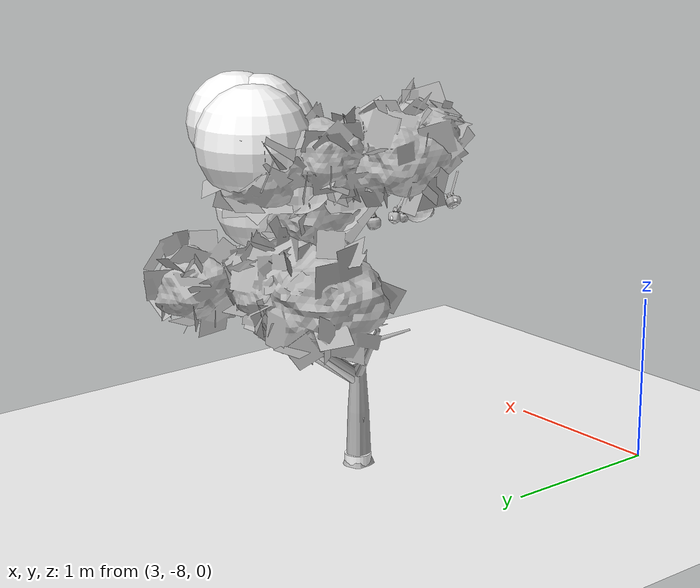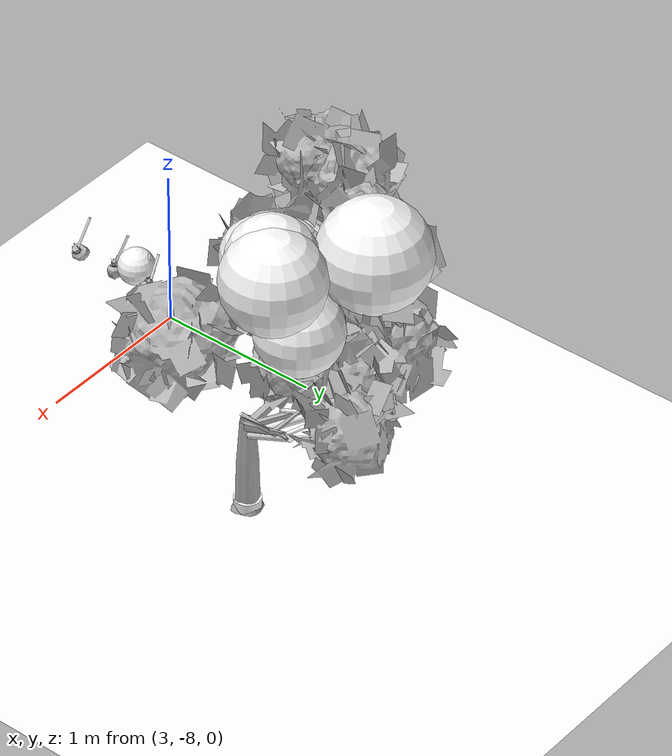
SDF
<sdf version="1.11">
 <world name="peach_orchard">
  <model name="ground">
   <static>true</static>
   <link name="link">
    <visual name="soil">
     <geometry><plane><normal>0 0 1</normal><size>32 22</size></plane></geometry>
     <material>
      <ambient>1 1 1 1</ambient>
      <diffuse>1 1 1 1</diffuse>
      <specular>0.1 0.1 0.1 1</specular>
      <pbr>
       <metal>
        <albedo_map>textures/soil_albedo.png</albedo_map>
        <normal_map type="tangent">textures/soil_normal.png</normal_map>
        <roughness>0.95</roughness>
        <metalness>0</metalness>
       </metal>
      </pbr>
     </material>
    </visual>
    <collision name="c_soil">
     <geometry><plane><normal>0 0 1</normal><size>32 22</size></plane></geometry>
    </collision>
   </link>
  </model>
  <model name="tree_r3_t0">
   <pose>4 -6.6 0 0 0 0</pose>
   <static>true</static>
   <link name="link">
    <visual name="tree_mesh">
     <pose>0 0 0 0 0 0.210482</pose>
     <geometry>
      <mesh><uri>model://peach_sim/meshes/peach_tree_a.glb</uri><scale>1.0623 1.0623 1.0623</scale></mesh>
     </geometry>
    </visual>
    <visual name="trunk_0">
     <pose>0 0 0.15302 0 0 0</pose>
     <geometry><cylinder><radius>0.0556093</radius><length>0.30604</length></cylinder></geometry>
     <material>
      <ambient>1 1 1 1</ambient>
      <diffuse>1 1 1 1</diffuse>
      <specular>0.1 0.1 0.1 1</specular>
      <pbr>
       <metal>
        <albedo_map>textures/bark_albedo.png</albedo_map>
        <normal_map type="tangent">textures/bark_normal.png</normal_map>
        <roughness>0.9</roughness>
        <metalness>0</metalness>
       </metal>
      </pbr>
     </material>
    </visual>
    <collision name="c_trunk_0">
     <pose>0 0 0.15302 0 0 0</pose>
     <geometry><cylinder><radius>0.0556093</radius><length>0.30604</length></cylinder></geometry>
    </collision>
    <visual name="trunk_1">
     <pose>0 0 0.431239 0 0 0</pose>
     <geometry><cylinder><radius>0.0400387</radius><length>0.250397</length></cylinder></geometry>
     <material>
      <ambient>1 1 1 1</ambient>
      <diffuse>1 1 1 1</diffuse>
      <specular>0.1 0.1 0.1 1</specular>
      <pbr>
       <metal>
        <albedo_map>textures/bark_albedo.png</albedo_map>
        <normal_map type="tangent">textures/bark_normal.png</normal_map>
        <roughness>0.9</roughness>
        <metalness>0</metalness>
       </metal>
      </pbr>
     </material>
    </visual>
    <collision name="c_trunk_1">
     <pose>0 0 0.431239 0 0 0</pose>
     <geometry><cylinder><radius>0.0400387</radius><length>0.250397</length></cylinder></geometry>
    </collision>
    <visual name="root_flare">
     <pose>0 0 0.035 0 0 0</pose>
     <geometry><cylinder><radius>0.0806335</radius><length>0.07</length></cylinder></geometry>
     <material>
      <ambient>1 1 1 1</ambient>
      <diffuse>1 1 1 1</diffuse>
      <specular>0.1 0.1 0.1 1</specular>
      <pbr>
       <metal>
        <albedo_map>textures/bark_albedo.png</albedo_map>
        <normal_map type="tangent">textures/bark_normal.png</normal_map>
        <roughness>0.95</roughness>
        <metalness>0</metalness>
       </metal>
      </pbr>
     </material>
    </visual>
    <visual name="scaffold_0">
     <pose>-0.0105899 0.314252 0.767716 0 0.887869 1.60448</pose>
     <geometry><cylinder><radius>0.022</radius><length>0.810672</length></cylinder></geometry>
     <material>
      <ambient>1 1 1 1</ambient>
      <diffuse>1 1 1 1</diffuse>
      <specular>0.1 0.1 0.1 1</specular>
      <pbr>
       <metal>
        <albedo_map>textures/bark_albedo.png</albedo_map>
        <normal_map type="tangent">textures/bark_normal.png</normal_map>
        <roughness>0.9</roughness>
        <metalness>0</metalness>
       </metal>
      </pbr>
     </material>
    </visual>
    <collision name="c_scaffold_0">
     <pose>-0.0105899 0.314252 0.767716 0 0.887869 1.60448</pose>
     <geometry><cylinder><radius>0.022</radius><length>0.810672</length></cylinder></geometry>
    </collision>
    <visual name="branchlet_0_0">
     <pose>0.0610896 0.411993 0.92727 0 1.34717 -0.730648</pose>
     <geometry><cylinder><radius>0.012</radius><length>0.212911</length></cylinder></geometry>
     <material>
      <ambient>1 1 1 1</ambient>
      <diffuse>1 1 1 1</diffuse>
      <specular>0.1 0.1 0.1 1</specular>
      <pbr>
       <metal>
        <albedo_map>textures/bark_albedo.png</albedo_map>
        <normal_map type="tangent">textures/bark_normal.png</normal_map>
        <roughness>0.9</roughness>
        <metalness>0</metalness>
       </metal>
      </pbr>
     </material>
    </visual>
    <visual name="branchlet_0_1">
     <pose>0.00327641 0.629002 1.00645 0 1.00672 1.37103</pose>
     <geometry><cylinder><radius>0.012</radius><length>0.250225</length></cylinder></geometry>
     <material>
      <ambient>1 1 1 1</ambient>
      <diffuse>1 1 1 1</diffuse>
      <specular>0.1 0.1 0.1 1</specular>
      <pbr>
       <metal>
        <albedo_map>textures/bark_albedo.png</albedo_map>
        <normal_map type="tangent">textures/bark_normal.png</normal_map>
        <roughness>0.9</roughness>
        <metalness>0</metalness>
       </metal>
      </pbr>
     </material>
    </visual>
    <visual name="scaffold_1">
     <pose>0.112412 0.242016 0.700521 0 0.955546 1.13597</pose>
     <geometry><cylinder><radius>0.022</radius><length>0.653538</length></cylinder></geometry>
     <material>
      <ambient>1 1 1 1</ambient>
      <diffuse>1 1 1 1</diffuse>
      <specular>0.1 0.1 0.1 1</specular>
      <pbr>
       <metal>
        <albedo_map>textures/bark_albedo.png</albedo_map>
        <normal_map type="tangent">textures/bark_normal.png</normal_map>
        <roughness>0.9</roughness>
        <metalness>0</metalness>
       </metal>
      </pbr>
     </material>
    </visual>
    <collision name="c_scaffold_1">
     <pose>0.112412 0.242016 0.700521 0 0.955546 1.13597</pose>
     <geometry><cylinder><radius>0.022</radius><length>0.653538</length></cylinder></geometry>
    </collision>
    <visual name="branchlet_1_0">
     <pose>0.236513 0.286421 0.87889 0 0.85312 -0.799009</pose>
     <geometry><cylinder><radius>0.012</radius><length>0.266637</length></cylinder></geometry>
     <material>
      <ambient>1 1 1 1</ambient>
      <diffuse>1 1 1 1</diffuse>
      <specular>0.1 0.1 0.1 1</specular>
      <pbr>
       <metal>
        <albedo_map>textures/bark_albedo.png</albedo_map>
        <normal_map type="tangent">textures/bark_normal.png</normal_map>
        <roughness>0.9</roughness>
        <metalness>0</metalness>
       </metal>
      </pbr>
     </material>
    </visual>
    <visual name="branchlet_1_1">
     <pose>0.0516583 0.44571 0.83719 0 1.29788 2.55002</pose>
     <geometry><cylinder><radius>0.012</radius><length>0.296277</length></cylinder></geometry>
     <material>
      <ambient>1 1 1 1</ambient>
      <diffuse>1 1 1 1</diffuse>
      <specular>0.1 0.1 0.1 1</specular>
      <pbr>
       <metal>
        <albedo_map>textures/bark_albedo.png</albedo_map>
        <normal_map type="tangent">textures/bark_normal.png</normal_map>
        <roughness>0.9</roughness>
        <metalness>0</metalness>
       </metal>
      </pbr>
     </material>
    </visual>
    <visual name="branchlet_1_2">
     <pose>0.156918 0.493924 0.851428 0 1.19995 1.72154</pose>
     <geometry><cylinder><radius>0.012</radius><length>0.255299</length></cylinder></geometry>
     <material>
      <ambient>1 1 1 1</ambient>
      <diffuse>1 1 1 1</diffuse>
      <specular>0.1 0.1 0.1 1</specular>
      <pbr>
       <metal>
        <albedo_map>textures/bark_albedo.png</albedo_map>
        <normal_map type="tangent">textures/bark_normal.png</normal_map>
        <roughness>0.9</roughness>
        <metalness>0</metalness>
       </metal>
      </pbr>
     </material>
    </visual>
    <visual name="canopy_0">
     <pose>0.0408955 0.26161 1.81235 0 0 0</pose>
     <geometry><sphere><radius>0.280646</radius></sphere></geometry>
     <material>
      <ambient>1 1 1 1</ambient>
      <diffuse>1 1 1 1</diffuse>
      <specular>0.1 0.1 0.1 1</specular>
      <pbr>
       <metal>
        <albedo_map>textures/leaf_albedo.png</albedo_map>
        <normal_map type="tangent">textures/leaf_normal.png</normal_map>
        <roughness>0.85</roughness>
        <metalness>0</metalness>
       </metal>
      </pbr>
     </material>
    </visual>
    <collision name="c_canopy_0">
     <pose>0.0408955 0.26161 1.81235 0 0 0</pose>
     <geometry><sphere><radius>0.280646</radius></sphere></geometry>
    </collision>
    <visual name="canopy_1">
     <pose>0.297753 0.3431 2.07911 0 0 0</pose>
     <geometry><sphere><radius>0.220225</radius></sphere></geometry>
     <material>
      <ambient>1 1 1 1</ambient>
      <diffuse>1 1 1 1</diffuse>
      <specular>0.1 0.1 0.1 1</specular>
      <pbr>
       <metal>
        <albedo_map>textures/leaf_albedo.png</albedo_map>
        <normal_map type="tangent">textures/leaf_normal.png</normal_map>
        <roughness>0.85</roughness>
        <metalness>0</metalness>
       </metal>
      </pbr>
     </material>
    </visual>
    <collision name="c_canopy_1">
     <pose>0.297753 0.3431 2.07911 0 0 0</pose>
     <geometry><sphere><radius>0.220225</radius></sphere></geometry>
    </collision>
    <visual name="canopy_2">
     <pose>-0.232357 0.596794 1.88742 0 0 0</pose>
     <geometry><sphere><radius>0.199249</radius></sphere></geometry>
     <material>
      <ambient>1 1 1 1</ambient>
      <diffuse>1 1 1 1</diffuse>
      <specular>0.1 0.1 0.1 1</specular>
      <pbr>
       <metal>
        <albedo_map>textures/leaf_albedo.png</albedo_map>
        <normal_map type="tangent">textures/leaf_normal.png</normal_map>
        <roughness>0.85</roughness>
        <metalness>0</metalness>
       </metal>
      </pbr>
     </material>
    </visual>
    <collision name="c_canopy_2">
     <pose>-0.232357 0.596794 1.88742 0 0 0</pose>
     <geometry><sphere><radius>0.199249</radius></sphere></geometry>
    </collision>
    <visual name="canopy_3">
     <pose>0.425943 0.53299 2.08937 0 0 0</pose>
     <geometry><sphere><radius>0.29277</radius></sphere></geometry>
     <material>
      <ambient>1 1 1 1</ambient>
      <diffuse>1 1 1 1</diffuse>
      <specular>0.1 0.1 0.1 1</specular>
      <pbr>
       <metal>
        <albedo_map>textures/leaf_albedo.png</albedo_map>
        <normal_map type="tangent">textures/leaf_normal.png</normal_map>
        <roughness>0.85</roughness>
        <metalness>0</metalness>
       </metal>
      </pbr>
     </material>
    </visual>
    <visual name="canopy_4">
     <pose>-0.0397947 0.26993 1.75576 0 0 0</pose>
     <geometry><sphere><radius>0.281064</radius></sphere></geometry>
     <material>
      <ambient>1 1 1 1</ambient>
      <diffuse>1 1 1 1</diffuse>
      <specular>0.1 0.1 0.1 1</specular>
      <pbr>
       <metal>
        <albedo_map>textures/leaf_albedo.png</albedo_map>
        <normal_map type="tangent">textures/leaf_normal.png</normal_map>
        <roughness>0.85</roughness>
        <metalness>0</metalness>
       </metal>
      </pbr>
     </material>
    </visual>
    <visual name="canopy_5">
     <pose>0.324459 0.441414 2.11613 0 0 0</pose>
     <geometry><sphere><radius>0.255268</radius></sphere></geometry>
     <material>
      <ambient>1 1 1 1</ambient>
      <diffuse>1 1 1 1</diffuse>
      <specular>0.1 0.1 0.1 1</specular>
      <pbr>
       <metal>
        <albedo_map>textures/leaf_albedo.png</albedo_map>
        <normal_map type="tangent">textures/leaf_normal.png</normal_map>
        <roughness>0.85</roughness>
        <metalness>0</metalness>
       </metal>
      </pbr>
     </material>
    </visual>
    <visual name="canopy_6">
     <pose>0.217945 0.537432 1.64301 0 0 0</pose>
     <geometry><sphere><radius>0.251501</radius></sphere></geometry>
     <material>
      <ambient>1 1 1 1</ambient>
      <diffuse>1 1 1 1</diffuse>
      <specular>0.1 0.1 0.1 1</specular>
      <pbr>
       <metal>
        <albedo_map>textures/leaf_albedo.png</albedo_map>
        <normal_map type="tangent">textures/leaf_normal.png</normal_map>
        <roughness>0.85</roughness>
        <metalness>0</metalness>
       </metal>
      </pbr>
     </material>
    </visual>
    <visual name="canopy_7">
     <pose>-0.0905776 0.787332 2.07958 0 0 0</pose>
     <geometry><sphere><radius>0.318735</radius></sphere></geometry>
     <material>
      <ambient>1 1 1 1</ambient>
      <diffuse>1 1 1 1</diffuse>
      <specular>0.1 0.1 0.1 1</specular>
      <pbr>
       <metal>
        <albedo_map>textures/leaf_albedo.png</albedo_map>
        <normal_map type="tangent">textures/leaf_normal.png</normal_map>
        <roughness>0.85</roughness>
        <metalness>0</metalness>
       </metal>
      </pbr>
     </material>
    </visual>
    <visual name="foliage_0">
     <pose>0.205199 -0.0439581 1.42515 0 0 0</pose>
     <geometry><sphere><radius>0.0999698</radius></sphere></geometry>
     <material>
      <ambient>1 1 1 1</ambient>
      <diffuse>1 1 1 1</diffuse>
      <specular>0.1 0.1 0.1 1</specular>
      <pbr>
       <metal>
        <albedo_map>textures/leaf_albedo.png</albedo_map>
        <normal_map type="tangent">textures/leaf_normal.png</normal_map>
        <roughness>0.85</roughness>
        <metalness>0</metalness>
       </metal>
      </pbr>
     </material>
    </visual>
    <visual name="foliage_4">
     <pose>0.280336 -0.00966176 1.50219 0 0 0</pose>
     <geometry><sphere><radius>0.0802819</radius></sphere></geometry>
     <material>
      <ambient>1 1 1 1</ambient>
      <diffuse>1 1 1 1</diffuse>
      <specular>0.1 0.1 0.1 1</specular>
      <pbr>
       <metal>
        <albedo_map>textures/leaf_albedo.png</albedo_map>
        <normal_map type="tangent">textures/leaf_normal.png</normal_map>
        <roughness>0.85</roughness>
        <metalness>0</metalness>
       </metal>
      </pbr>
     </material>
    </visual>
    <visual name="foliage_8">
     <pose>0.181397 -0.614469 1.4774 0 0 0</pose>
     <geometry><sphere><radius>0.104848</radius></sphere></geometry>
     <material>
      <ambient>1 1 1 1</ambient>
      <diffuse>1 1 1 1</diffuse>
      <specular>0.1 0.1 0.1 1</specular>
      <pbr>
       <metal>
        <albedo_map>textures/leaf_albedo.png</albedo_map>
        <normal_map type="tangent">textures/leaf_normal.png</normal_map>
        <roughness>0.85</roughness>
        <metalness>0</metalness>
       </metal>
      </pbr>
     </material>
    </visual>
    <visual name="twig_0">
     <pose>0.161272 -0.115505 1.49293 0 0.412594 -2.90051</pose>
     <geometry><cylinder><radius>0.007</radius><length>0.127995</length></cylinder></geometry>
     <material>
      <ambient>1 1 1 1</ambient>
      <diffuse>1 1 1 1</diffuse>
      <specular>0.1 0.1 0.1 1</specular>
      <pbr>
       <metal>
        <albedo_map>textures/bark_albedo.png</albedo_map>
        <normal_map type="tangent">textures/bark_normal.png</normal_map>
        <roughness>0.9</roughness>
        <metalness>0</metalness>
       </metal>
      </pbr>
     </material>
    </visual>
    <visual name="twig_1">
     <pose>0.158182 -0.0581862 1.52413 0 0.715115 -3.02339</pose>
     <geometry><cylinder><radius>0.007</radius><length>0.188418</length></cylinder></geometry>
     <material>
      <ambient>1 1 1 1</ambient>
      <diffuse>1 1 1 1</diffuse>
      <specular>0.1 0.1 0.1 1</specular>
      <pbr>
       <metal>
        <albedo_map>textures/bark_albedo.png</albedo_map>
        <normal_map type="tangent">textures/bark_normal.png</normal_map>
        <roughness>0.9</roughness>
        <metalness>0</metalness>
       </metal>
      </pbr>
     </material>
    </visual>
    <visual name="twig_2">
     <pose>0.18834 -0.101528 1.56511 0 0.521138 -2.89502</pose>
     <geometry><cylinder><radius>0.007</radius><length>0.142202</length></cylinder></geometry>
     <material>
      <ambient>1 1 1 1</ambient>
      <diffuse>1 1 1 1</diffuse>
      <specular>0.1 0.1 0.1 1</specular>
      <pbr>
       <metal>
        <albedo_map>textures/bark_albedo.png</albedo_map>
        <normal_map type="tangent">textures/bark_normal.png</normal_map>
        <roughness>0.9</roughness>
        <metalness>0</metalness>
       </metal>
      </pbr>
     </material>
    </visual>
    <visual name="twig_3">
     <pose>0.171339 -0.052174 1.58311 0 0.431326 2.50493</pose>
     <geometry><cylinder><radius>0.007</radius><length>0.162888</length></cylinder></geometry>
     <material>
      <ambient>1 1 1 1</ambient>
      <diffuse>1 1 1 1</diffuse>
      <specular>0.1 0.1 0.1 1</specular>
      <pbr>
       <metal>
        <albedo_map>textures/bark_albedo.png</albedo_map>
        <normal_map type="tangent">textures/bark_normal.png</normal_map>
        <roughness>0.9</roughness>
        <metalness>0</metalness>
       </metal>
      </pbr>
     </material>
    </visual>
    <visual name="twig_4">
     <pose>0.208274 -0.0202714 1.56957 0 0.37697 2.19467</pose>
     <geometry><cylinder><radius>0.007</radius><length>0.119986</length></cylinder></geometry>
     <material>
      <ambient>1 1 1 1</ambient>
      <diffuse>1 1 1 1</diffuse>
      <specular>0.1 0.1 0.1 1</specular>
      <pbr>
       <metal>
        <albedo_map>textures/bark_albedo.png</albedo_map>
        <normal_map type="tangent">textures/bark_normal.png</normal_map>
        <roughness>0.9</roughness>
        <metalness>0</metalness>
       </metal>
      </pbr>
     </material>
    </visual>
    <visual name="twig_5">
     <pose>0.192987 -0.0529154 1.5577 0 0.597044 -2.74615</pose>
     <geometry><cylinder><radius>0.007</radius><length>0.107194</length></cylinder></geometry>
     <material>
      <ambient>1 1 1 1</ambient>
      <diffuse>1 1 1 1</diffuse>
      <specular>0.1 0.1 0.1 1</specular>
      <pbr>
       <metal>
        <albedo_map>textures/bark_albedo.png</albedo_map>
        <normal_map type="tangent">textures/bark_normal.png</normal_map>
        <roughness>0.9</roughness>
        <metalness>0</metalness>
       </metal>
      </pbr>
     </material>
    </visual>
    <visual name="twig_6">
     <pose>0.182984 -0.283787 1.51191 0 0.629569 2.74837</pose>
     <geometry><cylinder><radius>0.007</radius><length>0.150992</length></cylinder></geometry>
     <material>
      <ambient>1 1 1 1</ambient>
      <diffuse>1 1 1 1</diffuse>
      <specular>0.1 0.1 0.1 1</specular>
      <pbr>
       <metal>
        <albedo_map>textures/bark_albedo.png</albedo_map>
        <normal_map type="tangent">textures/bark_normal.png</normal_map>
        <roughness>0.9</roughness>
        <metalness>0</metalness>
       </metal>
      </pbr>
     </material>
    </visual>
    <visual name="twig_7">
     <pose>0.179115 -0.490696 1.51809 0 0.629126 -2.97474</pose>
     <geometry><cylinder><radius>0.007</radius><length>0.161351</length></cylinder></geometry>
     <material>
      <ambient>1 1 1 1</ambient>
      <diffuse>1 1 1 1</diffuse>
      <specular>0.1 0.1 0.1 1</specular>
      <pbr>
       <metal>
        <albedo_map>textures/bark_albedo.png</albedo_map>
        <normal_map type="tangent">textures/bark_normal.png</normal_map>
        <roughness>0.9</roughness>
        <metalness>0</metalness>
       </metal>
      </pbr>
     </material>
    </visual>
    <visual name="twig_8">
     <pose>0.174268 -0.535229 1.51023 0 0.454083 -2.69315</pose>
     <geometry><cylinder><radius>0.007</radius><length>0.142294</length></cylinder></geometry>
     <material>
      <ambient>1 1 1 1</ambient>
      <diffuse>1 1 1 1</diffuse>
      <specular>0.1 0.1 0.1 1</specular>
      <pbr>
       <metal>
        <albedo_map>textures/bark_albedo.png</albedo_map>
        <normal_map type="tangent">textures/bark_normal.png</normal_map>
        <roughness>0.9</roughness>
        <metalness>0</metalness>
       </metal>
      </pbr>
     </material>
    </visual>
    <visual name="twig_9">
     <pose>0.201981 -0.699367 1.55759 0 0.356894 2.17544</pose>
     <geometry><cylinder><radius>0.007</radius><length>0.203774</length></cylinder></geometry>
     <material>
      <ambient>1 1 1 1</ambient>
      <diffuse>1 1 1 1</diffuse>
      <specular>0.1 0.1 0.1 1</specular>
      <pbr>
       <metal>
        <albedo_map>textures/bark_albedo.png</albedo_map>
        <normal_map type="tangent">textures/bark_normal.png</normal_map>
        <roughness>0.9</roughness>
        <metalness>0</metalness>
       </metal>
      </pbr>
     </material>
    </visual>
    <visual name="twig_10">
     <pose>0.221095 -0.952557 1.55364 0 0.469997 2.87751</pose>
     <geometry><cylinder><radius>0.007</radius><length>0.1991</length></cylinder></geometry>
     <material>
      <ambient>1 1 1 1</ambient>
      <diffuse>1 1 1 1</diffuse>
      <specular>0.1 0.1 0.1 1</specular>
      <pbr>
       <metal>
        <albedo_map>textures/bark_albedo.png</albedo_map>
        <normal_map type="tangent">textures/bark_normal.png</normal_map>
        <roughness>0.9</roughness>
        <metalness>0</metalness>
       </metal>
      </pbr>
     </material>
    </visual>
   </link>
  </model>
  <model name="peach_tree_r3_t0_00">
   <pose>4.22 -6.69786 1.36294 0 0.464017 -2.81321</pose>
   <static>true</static>
   <link name="bag">
    <visual name="bag_mesh">
     <pose>0 0 0.0489023 0 0 -0</pose>
     <geometry>
      <mesh><uri>model://peach_sim/meshes/bagged_peach.glb</uri><scale>1.04586 1.17621 1.11142</scale></mesh>
     </geometry>
    </visual>
    <visual name="body">
     <pose>0 0 0.0309023 0 0 0</pose>
     <geometry><ellipsoid><radii>0.0392199 0.0305815 0.0333745</radii></ellipsoid></geometry>
     <material>
      <ambient>1 1 1 1</ambient>
      <diffuse>1 1 1 1</diffuse>
      <specular>0.1 0.1 0.1 1</specular>
      <pbr>
       <metal>
        <albedo_map>textures/paper_bag_albedo.png</albedo_map>
        <normal_map type="tangent">textures/paper_bag_normal.png</normal_map>
        <roughness>0.72</roughness>
        <metalness>0</metalness>
       </metal>
      </pbr>
     </material>
    </visual>
    <visual name="bottom_fold">
     <pose>0 0 0.012 0 0 0.35</pose>
     <geometry><box><size>0.0607908 0.0351688 0.022</size></box></geometry>
     <material>
      <ambient>1 1 1 1</ambient>
      <diffuse>1 1 1 1</diffuse>
      <specular>0.1 0.1 0.1 1</specular>
      <pbr>
       <metal>
        <albedo_map>textures/paper_bag_albedo.png</albedo_map>
        <normal_map type="tangent">textures/paper_bag_normal.png</normal_map>
        <roughness>0.8</roughness>
        <metalness>0</metalness>
       </metal>
      </pbr>
     </material>
    </visual>
    <visual name="fruit">
     <pose>0 0 0.0180275 0 0 0</pose>
     <geometry><sphere><radius>0.0249886</radius></sphere></geometry>
     <material>
      <ambient>1 1 1 1</ambient>
      <diffuse>1 1 1 1</diffuse>
      <specular>0.1 0.1 0.1 1</specular>
      <pbr>
       <metal>
        <albedo_map>textures/fruit_skin_albedo.png</albedo_map>
        <normal_map type="tangent">textures/fruit_skin_normal.png</normal_map>
        <roughness>0.55</roughness>
        <metalness>0</metalness>
       </metal>
      </pbr>
     </material>
    </visual>
    <visual name="neck">
     <pose>0 0 0.0708047 0 0 0</pose>
     <geometry><cylinder><radius>0.013</radius><length>0.018</length></cylinder></geometry>
     <material>
      <ambient>1 1 1 1</ambient>
      <diffuse>1 1 1 1</diffuse>
      <specular>0.1 0.1 0.1 1</specular>
      <pbr>
       <metal>
        <albedo_map>textures/paper_bag_albedo.png</albedo_map>
        <normal_map type="tangent">textures/paper_bag_normal.png</normal_map>
        <roughness>0.75</roughness>
        <metalness>0</metalness>
       </metal>
      </pbr>
     </material>
    </visual>
    <visual name="gather">
     <pose>0 0 0.0518047 0 0 0</pose>
     <geometry><cylinder><radius>0.019</radius><length>0.02</length></cylinder></geometry>
     <material>
      <ambient>1 1 1 1</ambient>
      <diffuse>1 1 1 1</diffuse>
      <specular>0.1 0.1 0.1 1</specular>
      <pbr>
       <metal>
        <albedo_map>textures/paper_bag_albedo.png</albedo_map>
        <normal_map type="tangent">textures/paper_bag_normal.png</normal_map>
        <roughness>0.8</roughness>
        <metalness>0</metalness>
       </metal>
      </pbr>
     </material>
    </visual>
    <visual name="inner_paper">
     <pose>0 0 0.0758047 0 0 0</pose>
     <geometry><cylinder><radius>0.01</radius><length>0.008</length></cylinder></geometry>
     <material>
      <ambient>0.180392 0.14902 0.133333 1</ambient>
      <diffuse>0.180392 0.14902 0.133333 1</diffuse>
      <specular>0.1 0.1 0.1 1</specular>
     </material>
    </visual>
    <visual name="wire_0">
     <pose>0 0 0.0658047 0 0 0</pose>
     <geometry><cylinder><radius>0.0205</radius><length>0.0035</length></cylinder></geometry>
     <material>
      <ambient>0.25 0.25 0.25 1</ambient>
      <diffuse>0.25 0.25 0.25 1</diffuse>
      <specular>0.1 0.1 0.1 1</specular>
     </material>
    </visual>
    <visual name="wire_1">
     <pose>0 0 0.0728047 0 0 0</pose>
     <geometry><cylinder><radius>0.0205</radius><length>0.0035</length></cylinder></geometry>
     <material>
      <ambient>0.25 0.25 0.25 1</ambient>
      <diffuse>0.25 0.25 0.25 1</diffuse>
      <specular>0.1 0.1 0.1 1</specular>
     </material>
    </visual>
    <visual name="wire_tail">
     <pose>0.01 0 0.0738047 0 0.521618 0</pose>
     <geometry><cylinder><radius>0.0012</radius><length>0.026</length></cylinder></geometry>
     <material>
      <ambient>0.25 0.25 0.25 1</ambient>
      <diffuse>0.25 0.25 0.25 1</diffuse>
      <specular>0.1 0.1 0.1 1</specular>
     </material>
    </visual>
    <collision name="c_body">
     <pose>0 0 0.0309023 0 0 0</pose>
     <geometry><cylinder><radius>0.0392199</radius><length>0.0618047</length></cylinder></geometry>
    </collision>
   </link>
  </model>
  <model name="peach_tree_r3_t0_06">
   <pose>4.22 -6.91176 1.37046 0 0.144069 1.21692</pose>
   <static>true</static>
   <link name="bag">
    <visual name="bag_mesh">
     <pose>0 0 0.0496306 0 0 0</pose>
     <geometry>
      <mesh><uri>model://peach_sim/meshes/bagged_peach.glb</uri><scale>1.0392 1.11424 1.12797</scale></mesh>
     </geometry>
    </visual>
    <visual name="body">
     <pose>0 0 0.0316306 0 0 0</pose>
     <geometry><ellipsoid><radii>0.03897 0.0289702 0.0341611</radii></ellipsoid></geometry>
     <material>
      <ambient>1 1 1 1</ambient>
      <diffuse>1 1 1 1</diffuse>
      <specular>0.1 0.1 0.1 1</specular>
      <pbr>
       <metal>
        <albedo_map>textures/paper_bag_albedo.png</albedo_map>
        <normal_map type="tangent">textures/paper_bag_normal.png</normal_map>
        <roughness>0.72</roughness>
        <metalness>0</metalness>
       </metal>
      </pbr>
     </material>
    </visual>
    <visual name="bottom_fold">
     <pose>0 0 0.012 0 0 0.35</pose>
     <geometry><box><size>0.0604035 0.0333157 0.022</size></box></geometry>
     <material>
      <ambient>1 1 1 1</ambient>
      <diffuse>1 1 1 1</diffuse>
      <specular>0.1 0.1 0.1 1</specular>
      <pbr>
       <metal>
        <albedo_map>textures/paper_bag_albedo.png</albedo_map>
        <normal_map type="tangent">textures/paper_bag_normal.png</normal_map>
        <roughness>0.8</roughness>
        <metalness>0</metalness>
       </metal>
      </pbr>
     </material>
    </visual>
    <visual name="fruit">
     <pose>0 0 0.0208944 0 0 0</pose>
     <geometry><sphere><radius>0.0279702</radius></sphere></geometry>
     <material>
      <ambient>1 1 1 1</ambient>
      <diffuse>1 1 1 1</diffuse>
      <specular>0.1 0.1 0.1 1</specular>
      <pbr>
       <metal>
        <albedo_map>textures/fruit_skin_albedo.png</albedo_map>
        <normal_map type="tangent">textures/fruit_skin_normal.png</normal_map>
        <roughness>0.55</roughness>
        <metalness>0</metalness>
       </metal>
      </pbr>
     </material>
    </visual>
    <visual name="neck">
     <pose>0 0 0.0722612 0 0 0</pose>
     <geometry><cylinder><radius>0.013</radius><length>0.018</length></cylinder></geometry>
     <material>
      <ambient>1 1 1 1</ambient>
      <diffuse>1 1 1 1</diffuse>
      <specular>0.1 0.1 0.1 1</specular>
      <pbr>
       <metal>
        <albedo_map>textures/paper_bag_albedo.png</albedo_map>
        <normal_map type="tangent">textures/paper_bag_normal.png</normal_map>
        <roughness>0.75</roughness>
        <metalness>0</metalness>
       </metal>
      </pbr>
     </material>
    </visual>
    <visual name="gather">
     <pose>0 0 0.0532612 0 0 0</pose>
     <geometry><cylinder><radius>0.019</radius><length>0.02</length></cylinder></geometry>
     <material>
      <ambient>1 1 1 1</ambient>
      <diffuse>1 1 1 1</diffuse>
      <specular>0.1 0.1 0.1 1</specular>
      <pbr>
       <metal>
        <albedo_map>textures/paper_bag_albedo.png</albedo_map>
        <normal_map type="tangent">textures/paper_bag_normal.png</normal_map>
        <roughness>0.8</roughness>
        <metalness>0</metalness>
       </metal>
      </pbr>
     </material>
    </visual>
    <visual name="inner_paper">
     <pose>0 0 0.0772612 0 0 0</pose>
     <geometry><cylinder><radius>0.01</radius><length>0.008</length></cylinder></geometry>
     <material>
      <ambient>0.180392 0.14902 0.133333 1</ambient>
      <diffuse>0.180392 0.14902 0.133333 1</diffuse>
      <specular>0.1 0.1 0.1 1</specular>
     </material>
    </visual>
    <visual name="wire_0">
     <pose>0 0 0.0672612 0 0 0</pose>
     <geometry><cylinder><radius>0.0205</radius><length>0.0035</length></cylinder></geometry>
     <material>
      <ambient>0.25 0.25 0.25 1</ambient>
      <diffuse>0.25 0.25 0.25 1</diffuse>
      <specular>0.1 0.1 0.1 1</specular>
     </material>
    </visual>
    <visual name="wire_1">
     <pose>0 0 0.0742612 0 0 0</pose>
     <geometry><cylinder><radius>0.0205</radius><length>0.0035</length></cylinder></geometry>
     <material>
      <ambient>0.25 0.25 0.25 1</ambient>
      <diffuse>0.25 0.25 0.25 1</diffuse>
      <specular>0.1 0.1 0.1 1</specular>
     </material>
    </visual>
    <visual name="wire_tail">
     <pose>0.01 0 0.0752612 0 0.521618 0</pose>
     <geometry><cylinder><radius>0.0012</radius><length>0.026</length></cylinder></geometry>
     <material>
      <ambient>0.25 0.25 0.25 1</ambient>
      <diffuse>0.25 0.25 0.25 1</diffuse>
      <specular>0.1 0.1 0.1 1</specular>
     </material>
    </visual>
    <collision name="c_body">
     <pose>0 0 0.0316306 0 0 0</pose>
     <geometry><cylinder><radius>0.03897</radius><length>0.0632612</length></cylinder></geometry>
    </collision>
   </link>
  </model>
  <model name="peach_tree_r3_t0_07">
   <pose>4.22 -7.06298 1.38182 0 0.283542 -1.28035</pose>
   <static>true</static>
   <link name="bag">
    <visual name="bag_mesh">
     <pose>0 0 0.0459985 0 0 -0</pose>
     <geometry>
      <mesh><uri>model://peach_sim/meshes/bagged_peach.glb</uri><scale>0.9141 1.0537 1.04542</scale></mesh>
     </geometry>
    </visual>
    <visual name="body">
     <pose>0 0 0.0279985 0 0 0</pose>
     <geometry><ellipsoid><radii>0.0342788 0.0273962 0.0302384</radii></ellipsoid></geometry>
     <material>
      <ambient>1 1 1 1</ambient>
      <diffuse>1 1 1 1</diffuse>
      <specular>0.1 0.1 0.1 1</specular>
      <pbr>
       <metal>
        <albedo_map>textures/paper_bag_albedo.png</albedo_map>
        <normal_map type="tangent">textures/paper_bag_normal.png</normal_map>
        <roughness>0.72</roughness>
        <metalness>0</metalness>
       </metal>
      </pbr>
     </material>
    </visual>
    <visual name="bottom_fold">
     <pose>0 0 0.012 0 0 0.35</pose>
     <geometry><box><size>0.0531321 0.0315056 0.022</size></box></geometry>
     <material>
      <ambient>1 1 1 1</ambient>
      <diffuse>1 1 1 1</diffuse>
      <specular>0.1 0.1 0.1 1</specular>
      <pbr>
       <metal>
        <albedo_map>textures/paper_bag_albedo.png</albedo_map>
        <normal_map type="tangent">textures/paper_bag_normal.png</normal_map>
        <roughness>0.8</roughness>
        <metalness>0</metalness>
       </metal>
      </pbr>
     </material>
    </visual>
    <visual name="fruit">
     <pose>0 0 0.019597 0 0 0</pose>
     <geometry><sphere><radius>0.0266209</radius></sphere></geometry>
     <material>
      <ambient>1 1 1 1</ambient>
      <diffuse>1 1 1 1</diffuse>
      <specular>0.1 0.1 0.1 1</specular>
      <pbr>
       <metal>
        <albedo_map>textures/fruit_skin_albedo.png</albedo_map>
        <normal_map type="tangent">textures/fruit_skin_normal.png</normal_map>
        <roughness>0.55</roughness>
        <metalness>0</metalness>
       </metal>
      </pbr>
     </material>
    </visual>
    <visual name="neck">
     <pose>0 0 0.064997 0 0 0</pose>
     <geometry><cylinder><radius>0.013</radius><length>0.018</length></cylinder></geometry>
     <material>
      <ambient>1 1 1 1</ambient>
      <diffuse>1 1 1 1</diffuse>
      <specular>0.1 0.1 0.1 1</specular>
      <pbr>
       <metal>
        <albedo_map>textures/paper_bag_albedo.png</albedo_map>
        <normal_map type="tangent">textures/paper_bag_normal.png</normal_map>
        <roughness>0.75</roughness>
        <metalness>0</metalness>
       </metal>
      </pbr>
     </material>
    </visual>
    <visual name="gather">
     <pose>0 0 0.045997 0 0 0</pose>
     <geometry><cylinder><radius>0.019</radius><length>0.02</length></cylinder></geometry>
     <material>
      <ambient>1 1 1 1</ambient>
      <diffuse>1 1 1 1</diffuse>
      <specular>0.1 0.1 0.1 1</specular>
      <pbr>
       <metal>
        <albedo_map>textures/paper_bag_albedo.png</albedo_map>
        <normal_map type="tangent">textures/paper_bag_normal.png</normal_map>
        <roughness>0.8</roughness>
        <metalness>0</metalness>
       </metal>
      </pbr>
     </material>
    </visual>
    <visual name="inner_paper">
     <pose>0 0 0.069997 0 0 0</pose>
     <geometry><cylinder><radius>0.01</radius><length>0.008</length></cylinder></geometry>
     <material>
      <ambient>0.180392 0.14902 0.133333 1</ambient>
      <diffuse>0.180392 0.14902 0.133333 1</diffuse>
      <specular>0.1 0.1 0.1 1</specular>
     </material>
    </visual>
    <visual name="wire_0">
     <pose>0 0 0.059997 0 0 0</pose>
     <geometry><cylinder><radius>0.0205</radius><length>0.0035</length></cylinder></geometry>
     <material>
      <ambient>0.25 0.25 0.25 1</ambient>
      <diffuse>0.25 0.25 0.25 1</diffuse>
      <specular>0.1 0.1 0.1 1</specular>
     </material>
    </visual>
    <visual name="wire_1">
     <pose>0 0 0.066997 0 0 0</pose>
     <geometry><cylinder><radius>0.0205</radius><length>0.0035</length></cylinder></geometry>
     <material>
      <ambient>0.25 0.25 0.25 1</ambient>
      <diffuse>0.25 0.25 0.25 1</diffuse>
      <specular>0.1 0.1 0.1 1</specular>
     </material>
    </visual>
    <visual name="wire_tail">
     <pose>0.01 0 0.067997 0 0.521618 0</pose>
     <geometry><cylinder><radius>0.0012</radius><length>0.026</length></cylinder></geometry>
     <material>
      <ambient>0.25 0.25 0.25 1</ambient>
      <diffuse>0.25 0.25 0.25 1</diffuse>
      <specular>0.1 0.1 0.1 1</specular>
     </material>
    </visual>
    <collision name="c_body">
     <pose>0 0 0.0279985 0 0 0</pose>
     <geometry><cylinder><radius>0.0342788</radius><length>0.055997</length></cylinder></geometry>
    </collision>
   </link>
  </model>
  <model name="peach_tree_r3_t0_08">
   <pose>4.22 -7.12907 1.38816 0 0.317288 2.74534</pose>
   <static>true</static>
   <link name="bag">
    <visual name="bag_mesh">
     <pose>0 0 0.0395929 0 0 0</pose>
     <geometry>
      <mesh><uri>model://peach_sim/meshes/bagged_peach.glb</uri><scale>0.973382 1.11916 0.899838</scale></mesh>
     </geometry>
    </visual>
    <visual name="body">
     <pose>0 0 0.0215929 0 0 0</pose>
     <geometry><ellipsoid><radii>0.0365018 0.0290981 0.0233203</radii></ellipsoid></geometry>
     <material>
      <ambient>1 1 1 1</ambient>
      <diffuse>1 1 1 1</diffuse>
      <specular>0.1 0.1 0.1 1</specular>
      <pbr>
       <metal>
        <albedo_map>textures/paper_bag_albedo.png</albedo_map>
        <normal_map type="tangent">textures/paper_bag_normal.png</normal_map>
        <roughness>0.72</roughness>
        <metalness>0</metalness>
       </metal>
      </pbr>
     </material>
    </visual>
    <visual name="bottom_fold">
     <pose>0 0 0.012 0 0 0.35</pose>
     <geometry><box><size>0.0565778 0.0334628 0.022</size></box></geometry>
     <material>
      <ambient>1 1 1 1</ambient>
      <diffuse>1 1 1 1</diffuse>
      <specular>0.1 0.1 0.1 1</specular>
      <pbr>
       <metal>
        <albedo_map>textures/paper_bag_albedo.png</albedo_map>
        <normal_map type="tangent">textures/paper_bag_normal.png</normal_map>
        <roughness>0.8</roughness>
        <metalness>0</metalness>
       </metal>
      </pbr>
     </material>
    </visual>
    <visual name="fruit">
     <pose>0 0 0.0212029 0 0 0</pose>
     <geometry><sphere><radius>0.028291</radius></sphere></geometry>
     <material>
      <ambient>1 1 1 1</ambient>
      <diffuse>1 1 1 1</diffuse>
      <specular>0.1 0.1 0.1 1</specular>
      <pbr>
       <metal>
        <albedo_map>textures/fruit_skin_albedo.png</albedo_map>
        <normal_map type="tangent">textures/fruit_skin_normal.png</normal_map>
        <roughness>0.55</roughness>
        <metalness>0</metalness>
       </metal>
      </pbr>
     </material>
    </visual>
    <visual name="neck">
     <pose>0 0 0.0521857 0 0 0</pose>
     <geometry><cylinder><radius>0.013</radius><length>0.018</length></cylinder></geometry>
     <material>
      <ambient>1 1 1 1</ambient>
      <diffuse>1 1 1 1</diffuse>
      <specular>0.1 0.1 0.1 1</specular>
      <pbr>
       <metal>
        <albedo_map>textures/paper_bag_albedo.png</albedo_map>
        <normal_map type="tangent">textures/paper_bag_normal.png</normal_map>
        <roughness>0.75</roughness>
        <metalness>0</metalness>
       </metal>
      </pbr>
     </material>
    </visual>
    <visual name="gather">
     <pose>0 0 0.0331857 0 0 0</pose>
     <geometry><cylinder><radius>0.019</radius><length>0.02</length></cylinder></geometry>
     <material>
      <ambient>1 1 1 1</ambient>
      <diffuse>1 1 1 1</diffuse>
      <specular>0.1 0.1 0.1 1</specular>
      <pbr>
       <metal>
        <albedo_map>textures/paper_bag_albedo.png</albedo_map>
        <normal_map type="tangent">textures/paper_bag_normal.png</normal_map>
        <roughness>0.8</roughness>
        <metalness>0</metalness>
       </metal>
      </pbr>
     </material>
    </visual>
    <visual name="inner_paper">
     <pose>0 0 0.0571857 0 0 0</pose>
     <geometry><cylinder><radius>0.01</radius><length>0.008</length></cylinder></geometry>
     <material>
      <ambient>0.180392 0.14902 0.133333 1</ambient>
      <diffuse>0.180392 0.14902 0.133333 1</diffuse>
      <specular>0.1 0.1 0.1 1</specular>
     </material>
    </visual>
    <visual name="wire_0">
     <pose>0 0 0.0471857 0 0 0</pose>
     <geometry><cylinder><radius>0.0205</radius><length>0.0035</length></cylinder></geometry>
     <material>
      <ambient>0.25 0.25 0.25 1</ambient>
      <diffuse>0.25 0.25 0.25 1</diffuse>
      <specular>0.1 0.1 0.1 1</specular>
     </material>
    </visual>
    <visual name="wire_1">
     <pose>0 0 0.0541857 0 0 0</pose>
     <geometry><cylinder><radius>0.0205</radius><length>0.0035</length></cylinder></geometry>
     <material>
      <ambient>0.25 0.25 0.25 1</ambient>
      <diffuse>0.25 0.25 0.25 1</diffuse>
      <specular>0.1 0.1 0.1 1</specular>
     </material>
    </visual>
    <visual name="wire_tail">
     <pose>0.01 0 0.0551857 0 0.521618 0</pose>
     <geometry><cylinder><radius>0.0012</radius><length>0.026</length></cylinder></geometry>
     <material>
      <ambient>0.25 0.25 0.25 1</ambient>
      <diffuse>0.25 0.25 0.25 1</diffuse>
      <specular>0.1 0.1 0.1 1</specular>
     </material>
    </visual>
    <collision name="c_body">
     <pose>0 0 0.0215929 0 0 0</pose>
     <geometry><cylinder><radius>0.0365018</radius><length>0.0431857</length></cylinder></geometry>
    </collision>
   </link>
  </model>
  <model name="peach_tree_r3_t0_09">
   <pose>4.22 -7.32793 1.38087 0 0.0286813 -0.315258</pose>
   <static>true</static>
   <link name="bag">
    <visual name="bag_mesh">
     <pose>0 0 0.0496426 0 0 -0</pose>
     <geometry>
      <mesh><uri>model://peach_sim/meshes/bagged_peach.glb</uri><scale>1.09088 1.16586 1.12824</scale></mesh>
     </geometry>
    </visual>
    <visual name="body">
     <pose>0 0 0.0316426 0 0 0</pose>
     <geometry><ellipsoid><radii>0.0409079 0.0303125 0.0341741</radii></ellipsoid></geometry>
     <material>
      <ambient>1 1 1 1</ambient>
      <diffuse>1 1 1 1</diffuse>
      <specular>0.1 0.1 0.1 1</specular>
      <pbr>
       <metal>
        <albedo_map>textures/paper_bag_albedo.png</albedo_map>
        <normal_map type="tangent">textures/paper_bag_normal.png</normal_map>
        <roughness>0.72</roughness>
        <metalness>0</metalness>
       </metal>
      </pbr>
     </material>
    </visual>
    <visual name="bottom_fold">
     <pose>0 0 0.012 0 0 0.35</pose>
     <geometry><box><size>0.0634073 0.0348594 0.022</size></box></geometry>
     <material>
      <ambient>1 1 1 1</ambient>
      <diffuse>1 1 1 1</diffuse>
      <specular>0.1 0.1 0.1 1</specular>
      <pbr>
       <metal>
        <albedo_map>textures/paper_bag_albedo.png</albedo_map>
        <normal_map type="tangent">textures/paper_bag_normal.png</normal_map>
        <roughness>0.8</roughness>
        <metalness>0</metalness>
       </metal>
      </pbr>
     </material>
    </visual>
    <visual name="fruit">
     <pose>0 0 0.018896 0 0 0</pose>
     <geometry><sphere><radius>0.0258918</radius></sphere></geometry>
     <material>
      <ambient>1 1 1 1</ambient>
      <diffuse>1 1 1 1</diffuse>
      <specular>0.1 0.1 0.1 1</specular>
      <pbr>
       <metal>
        <albedo_map>textures/fruit_skin_albedo.png</albedo_map>
        <normal_map type="tangent">textures/fruit_skin_normal.png</normal_map>
        <roughness>0.55</roughness>
        <metalness>0</metalness>
       </metal>
      </pbr>
     </material>
    </visual>
    <visual name="neck">
     <pose>0 0 0.0722853 0 0 0</pose>
     <geometry><cylinder><radius>0.013</radius><length>0.018</length></cylinder></geometry>
     <material>
      <ambient>1 1 1 1</ambient>
      <diffuse>1 1 1 1</diffuse>
      <specular>0.1 0.1 0.1 1</specular>
      <pbr>
       <metal>
        <albedo_map>textures/paper_bag_albedo.png</albedo_map>
        <normal_map type="tangent">textures/paper_bag_normal.png</normal_map>
        <roughness>0.75</roughness>
        <metalness>0</metalness>
       </metal>
      </pbr>
     </material>
    </visual>
    <visual name="gather">
     <pose>0 0 0.0532853 0 0 0</pose>
     <geometry><cylinder><radius>0.019</radius><length>0.02</length></cylinder></geometry>
     <material>
      <ambient>1 1 1 1</ambient>
      <diffuse>1 1 1 1</diffuse>
      <specular>0.1 0.1 0.1 1</specular>
      <pbr>
       <metal>
        <albedo_map>textures/paper_bag_albedo.png</albedo_map>
        <normal_map type="tangent">textures/paper_bag_normal.png</normal_map>
        <roughness>0.8</roughness>
        <metalness>0</metalness>
       </metal>
      </pbr>
     </material>
    </visual>
    <visual name="inner_paper">
     <pose>0 0 0.0772853 0 0 0</pose>
     <geometry><cylinder><radius>0.01</radius><length>0.008</length></cylinder></geometry>
     <material>
      <ambient>0.180392 0.14902 0.133333 1</ambient>
      <diffuse>0.180392 0.14902 0.133333 1</diffuse>
      <specular>0.1 0.1 0.1 1</specular>
     </material>
    </visual>
    <visual name="wire_0">
     <pose>0 0 0.0672853 0 0 0</pose>
     <geometry><cylinder><radius>0.0205</radius><length>0.0035</length></cylinder></geometry>
     <material>
      <ambient>0.25 0.25 0.25 1</ambient>
      <diffuse>0.25 0.25 0.25 1</diffuse>
      <specular>0.1 0.1 0.1 1</specular>
     </material>
    </visual>
    <visual name="wire_1">
     <pose>0 0 0.0742853 0 0 0</pose>
     <geometry><cylinder><radius>0.0205</radius><length>0.0035</length></cylinder></geometry>
     <material>
      <ambient>0.25 0.25 0.25 1</ambient>
      <diffuse>0.25 0.25 0.25 1</diffuse>
      <specular>0.1 0.1 0.1 1</specular>
     </material>
    </visual>
    <visual name="wire_tail">
     <pose>0.01 0 0.0752853 0 0.521618 0</pose>
     <geometry><cylinder><radius>0.0012</radius><length>0.026</length></cylinder></geometry>
     <material>
      <ambient>0.25 0.25 0.25 1</ambient>
      <diffuse>0.25 0.25 0.25 1</diffuse>
      <specular>0.1 0.1 0.1 1</specular>
     </material>
    </visual>
    <collision name="c_body">
     <pose>0 0 0.0316426 0 0 0</pose>
     <geometry><cylinder><radius>0.0409079</radius><length>0.0632853</length></cylinder></geometry>
    </collision>
   </link>
  </model>
  <model name="peach_tree_r3_t0_10">
   <pose>4.22 -7.55989 1.40974 0 0.682697 -0.0991587</pose>
   <static>true</static>
   <link name="bag">
    <visual name="bag_mesh">
     <pose>0 0 0.0445345 0 0 -0</pose>
     <geometry>
      <mesh><uri>model://peach_sim/meshes/bagged_peach.glb</uri><scale>1.09169 1.34719 1.01215</scale></mesh>
     </geometry>
    </visual>
    <visual name="body">
     <pose>0 0 0.0265345 0 0 0</pose>
     <geometry><ellipsoid><radii>0.0409385 0.035027 0.0286573</radii></ellipsoid></geometry>
     <material>
      <ambient>1 1 1 1</ambient>
      <diffuse>1 1 1 1</diffuse>
      <specular>0.1 0.1 0.1 1</specular>
      <pbr>
       <metal>
        <albedo_map>textures/paper_bag_albedo.png</albedo_map>
        <normal_map type="tangent">textures/paper_bag_normal.png</normal_map>
        <roughness>0.72</roughness>
        <metalness>0</metalness>
       </metal>
      </pbr>
     </material>
    </visual>
    <visual name="bottom_fold">
     <pose>0 0 0.012 0 0 0.35</pose>
     <geometry><box><size>0.0634547 0.0402811 0.022</size></box></geometry>
     <material>
      <ambient>1 1 1 1</ambient>
      <diffuse>1 1 1 1</diffuse>
      <specular>0.1 0.1 0.1 1</specular>
      <pbr>
       <metal>
        <albedo_map>textures/paper_bag_albedo.png</albedo_map>
        <normal_map type="tangent">textures/paper_bag_normal.png</normal_map>
        <roughness>0.8</roughness>
        <metalness>0</metalness>
       </metal>
      </pbr>
     </material>
    </visual>
    <visual name="fruit">
     <pose>0 0 0.0183181 0 0 0</pose>
     <geometry><sphere><radius>0.0252909</radius></sphere></geometry>
     <material>
      <ambient>1 1 1 1</ambient>
      <diffuse>1 1 1 1</diffuse>
      <specular>0.1 0.1 0.1 1</specular>
      <pbr>
       <metal>
        <albedo_map>textures/fruit_skin_albedo.png</albedo_map>
        <normal_map type="tangent">textures/fruit_skin_normal.png</normal_map>
        <roughness>0.55</roughness>
        <metalness>0</metalness>
       </metal>
      </pbr>
     </material>
    </visual>
    <visual name="neck">
     <pose>0 0 0.062069 0 0 0</pose>
     <geometry><cylinder><radius>0.013</radius><length>0.018</length></cylinder></geometry>
     <material>
      <ambient>1 1 1 1</ambient>
      <diffuse>1 1 1 1</diffuse>
      <specular>0.1 0.1 0.1 1</specular>
      <pbr>
       <metal>
        <albedo_map>textures/paper_bag_albedo.png</albedo_map>
        <normal_map type="tangent">textures/paper_bag_normal.png</normal_map>
        <roughness>0.75</roughness>
        <metalness>0</metalness>
       </metal>
      </pbr>
     </material>
    </visual>
    <visual name="gather">
     <pose>0 0 0.043069 0 0 0</pose>
     <geometry><cylinder><radius>0.019</radius><length>0.02</length></cylinder></geometry>
     <material>
      <ambient>1 1 1 1</ambient>
      <diffuse>1 1 1 1</diffuse>
      <specular>0.1 0.1 0.1 1</specular>
      <pbr>
       <metal>
        <albedo_map>textures/paper_bag_albedo.png</albedo_map>
        <normal_map type="tangent">textures/paper_bag_normal.png</normal_map>
        <roughness>0.8</roughness>
        <metalness>0</metalness>
       </metal>
      </pbr>
     </material>
    </visual>
    <visual name="inner_paper">
     <pose>0 0 0.067069 0 0 0</pose>
     <geometry><cylinder><radius>0.01</radius><length>0.008</length></cylinder></geometry>
     <material>
      <ambient>0.180392 0.14902 0.133333 1</ambient>
      <diffuse>0.180392 0.14902 0.133333 1</diffuse>
      <specular>0.1 0.1 0.1 1</specular>
     </material>
    </visual>
    <visual name="wire_0">
     <pose>0 0 0.057069 0 0 0</pose>
     <geometry><cylinder><radius>0.0205</radius><length>0.0035</length></cylinder></geometry>
     <material>
      <ambient>0.25 0.25 0.25 1</ambient>
      <diffuse>0.25 0.25 0.25 1</diffuse>
      <specular>0.1 0.1 0.1 1</specular>
     </material>
    </visual>
    <visual name="wire_1">
     <pose>0 0 0.064069 0 0 0</pose>
     <geometry><cylinder><radius>0.0205</radius><length>0.0035</length></cylinder></geometry>
     <material>
      <ambient>0.25 0.25 0.25 1</ambient>
      <diffuse>0.25 0.25 0.25 1</diffuse>
      <specular>0.1 0.1 0.1 1</specular>
     </material>
    </visual>
    <visual name="wire_tail">
     <pose>0.01 0 0.065069 0 0.521618 0</pose>
     <geometry><cylinder><radius>0.0012</radius><length>0.026</length></cylinder></geometry>
     <material>
      <ambient>0.25 0.25 0.25 1</ambient>
      <diffuse>0.25 0.25 0.25 1</diffuse>
      <specular>0.1 0.1 0.1 1</specular>
     </material>
    </visual>
    <collision name="c_body">
     <pose>0 0 0.0265345 0 0 0</pose>
     <geometry><cylinder><radius>0.0409385</radius><length>0.053069</length></cylinder></geometry>
    </collision>
   </link>
  </model>
 </world>
</sdf>
